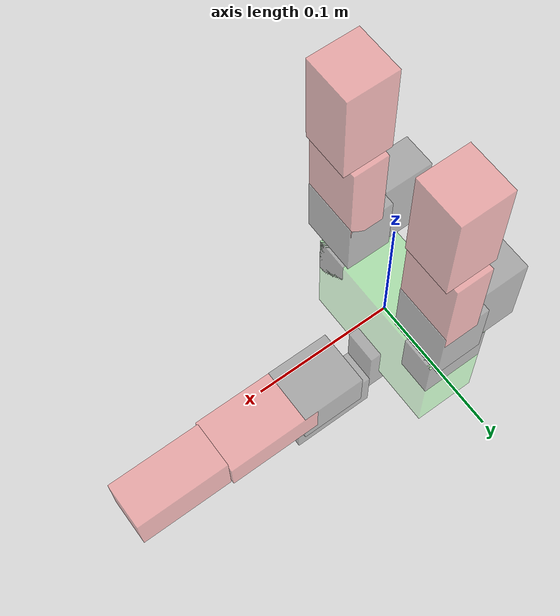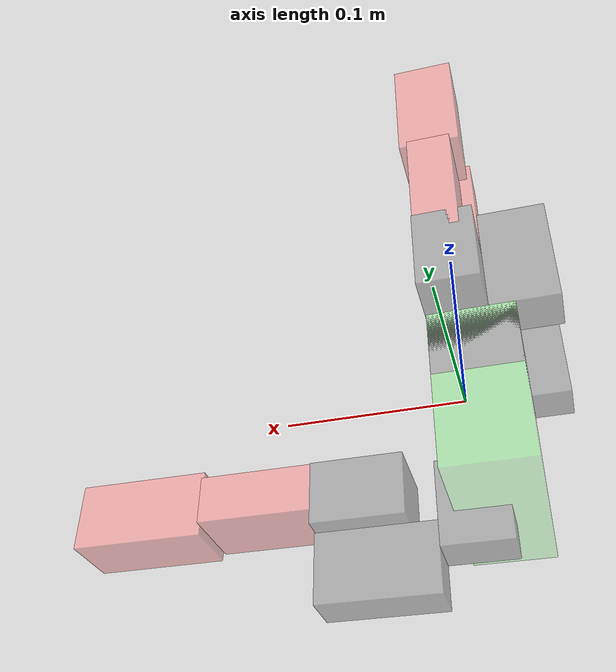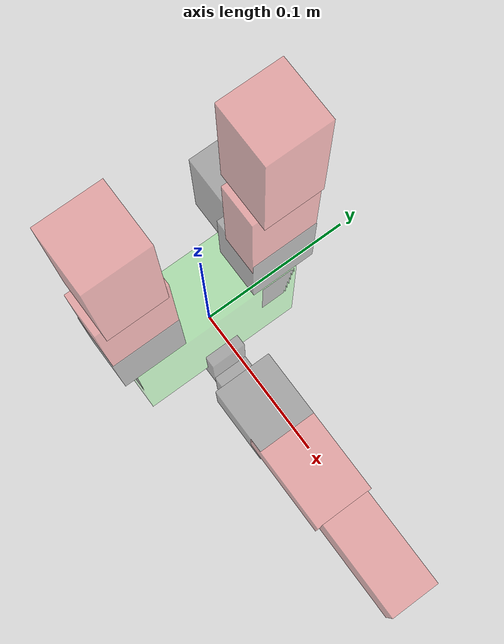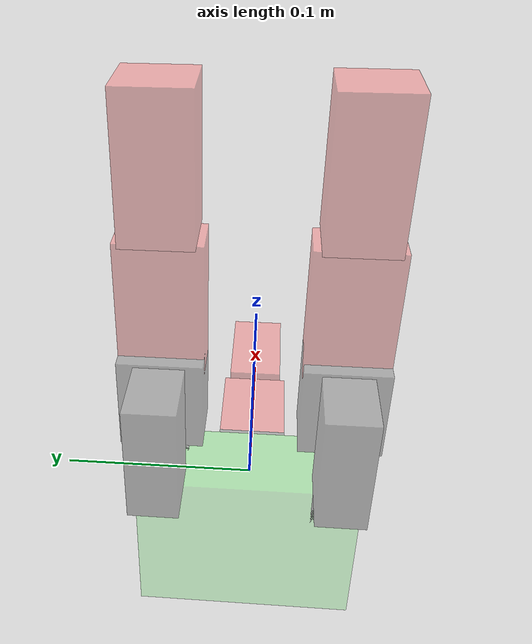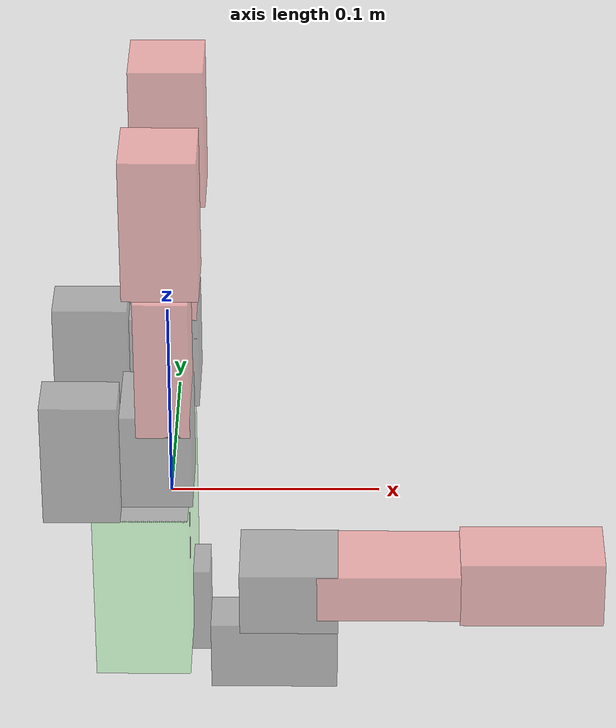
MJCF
<mujoco model="MuJoCo Model">
  <compiler angle="radian"/>

  <option timestep="0.0001" integrator="implicitfast"/>

  <default>
    <joint armature="0.01" frictionloss="0.01"/>
    <geom conaffinity="2" condim="4" friction="0.9 0.2 0.2" solref="0.001"/>

    <equality solref="1e-06 30"/>
    <general ctrllimited="true" biastype="affine" gainprm="1000000" biasprm="0 -1000000"/>
  </default>

  <asset>
    <texture type="skybox" builtin="gradient" rgb1="1 1 1" rgb2="1 1 1" width="265" height="1590"/>
    <texture type="2d" name="grid" builtin="checker" rgb1="0.1 0.2 0.3" rgb2="0.2 0.3 0.4" width="300" height="300"/>
    <material name="grid" texture="grid" texrepeat="10 10" reflectance="0.2"/>
  </asset>

  <worldbody>
    <geom name="fingers_bbox" size="0.0225 0.0575 0.043" pos="-0.0125 0 -0.025" type="box" rgba="0 1 0 0.2"/>
    <light pos="0 0 10" dir="0 0 -1"/>
    <body name="ID1_ROT" pos="0 0.045 0">
      <geom name="ID1_ROT_geom" size="0.0225 0.0125 0.018" pos="-0.0125 0 0" type="box" rgba="0.5 0.5 0.5 0.5"/>
      <body name="ID1_ABD" pos="-0.0395 0 0.07" quat="0.707107 0 0.707107 0">
        <joint name="ID1_ROT_joint" pos="0.07 0 0.0395" axis="-1 0 0" range="-1.5708 0"/>
        <geom name="ID1_ABD_geom" size="0.031 0.0125 0.018" pos="0.021 0 0" type="box" rgba="0.5 0.5 0.5 0.5"/>
        <body name="ID1_PIP" pos="0 0 0.0395" quat="0.707107 -0.707107 0 0">
          <joint name="ID1_ABD_joint" pos="0 0.0395 0" axis="0 -1 0" range="-1.5708 1.5708"/>
          <geom name="ID1_PIP_geom" size="0.024 0.0165 0.021" pos="0.0136 0.0035 0" type="box" rgba="0.5 0.5 0.5 0.5"/>
          <body name="ID1_DIP" pos="-0.07 0 0">
            <joint name="ID1_PIP_joint" pos="0.07 0 0" axis="0 0 1" range="0 1.5708"/>
            <geom name="ID1_DIP_geom" size="0.035 0.0125 0.021" pos="0.035 0 0" type="box" rgba="1 0.5 0.5 0.5"/>
            <body name="ID1_FIN" pos="-0.07 0 0">
              <joint name="ID1_DIP_joint" pos="0.07 0 0" axis="0 0 1" range="0 1.5708"/>
              <geom name="ID1_FIN_geom" size="0.035 0.0175 0.0175" pos="0.035 0 0" type="box" rgba="1 0.5 0.5 0.5"/>
            </body>
          </body>
        </body>
      </body>
    </body>
    <body name="ID2_ROT" pos="0 -0.045 0">
      <geom name="ID2_ROT_geom" size="0.0225 0.0125 0.018" pos="-0.0125 0 0" type="box" rgba="0.5 0.5 0.5 0.5"/>
      <body name="ID2_ABD" pos="-0.0395 0 0.07" quat="0.707107 0 0.707107 0">
        <joint name="ID2_ROT_joint" pos="0.07 0 0.0395" axis="-1 0 0" range="-1.5708 0"/>
        <geom name="ID2_ABD_geom" size="0.031 0.0125 0.018" pos="0.021 0 0" type="box" rgba="0.5 0.5 0.5 0.5"/>
        <body name="ID2_PIP" pos="0 0 0.0395" quat="0.707107 -0.707107 0 0">
          <joint name="ID2_ABD_joint" pos="0 0.0395 0" axis="0 -1 0" range="-1.5708 1.5708"/>
          <geom name="ID2_PIP_geom" size="0.024 0.0165 0.021" pos="0.0136 0.0035 0" type="box" rgba="0.5 0.5 0.5 0.5"/>
          <body name="ID2_DIP" pos="-0.07 0 0">
            <joint name="ID2_PIP_joint" pos="0.07 0 0" axis="0 0 1" range="0 1.5708"/>
            <geom name="ID2_DIP_geom" size="0.035 0.0125 0.021" pos="0.035 0 0" type="box" rgba="1 0.5 0.5 0.5"/>
            <body name="ID2_FIN" pos="-0.07 0 0">
              <joint name="ID2_DIP_joint" pos="0.07 0 0" axis="0 0 1" range="0 1.5708"/>
              <geom name="ID2_FIN_geom" size="0.035 0.0175 0.0175" pos="0.035 0 0" type="box" rgba="1 0.5 0.5 0.5"/>
            </body>
          </body>
        </body>
      </body>
    </body>
    <body name="ID3_ROT" pos="0 0 -0.05" quat="0 0.707107 0 0.707107">
      <geom name="ID3_ROT_geom" size="0.0225 0.0125 0.018" pos="-0.0125 0 0" type="box" rgba="0.5 0.5 0.5 0.5"/>
      <body name="ID3_ABD" pos="-0.0395 0 0.07" quat="0.707107 0 0.707107 0">
        <joint name="ID3_ROT_joint" pos="0.07 0 0.0395" axis="-1 0 0" range="-1.5708 0"/>
        <geom name="ID3_ABD_geom" size="0.031 0.0125 0.018" pos="0.021 0 0" type="box" rgba="0.5 0.5 0.5 0.5"/>
        <body name="ID3_PIP" pos="0 0 0.0395" quat="0.707107 -0.707107 0 0">
          <joint name="ID3_ABD_joint" pos="0 0.0395 0" axis="0 -1 0" range="-1.5708 1.5708"/>
          <geom name="ID3_PIP_geom" size="0.024 0.0165 0.021" pos="0.0136 0.0035 0" type="box" rgba="0.5 0.5 0.5 0.5"/>
          <body name="ID3_DIP" pos="-0.07 0 0">
            <joint name="ID3_PIP_joint" pos="0.07 0 0" axis="0 0 1" range="0 1.5708"/>
            <geom name="ID3_DIP_geom" size="0.035 0.0125 0.021" pos="0.035 0 0" type="box" rgba="1 0.5 0.5 0.5"/>
            <body name="ID3_FIN" pos="-0.07 0 0">
              <joint name="ID3_DIP_joint" pos="0.07 0 0" axis="0 0 1" range="0 1.5708"/>
              <geom name="ID3_FIN_geom" size="0.035 0.0175 0.0175" pos="0.035 0 0" type="box" rgba="1 0.5 0.5 0.5"/>
            </body>
          </body>
        </body>
      </body>
    </body>
  </worldbody>

  <actuator>
    <position name="ID1_ROT_joint_pos" joint="ID1_ROT_joint" ctrlrange="-90 0" timeconst="1"/>
    <position name="ID1_ABD_joint_pos" joint="ID1_ABD_joint" ctrlrange="-90 90" timeconst="1"/>
    <position name="ID1_PIP_joint_pos" joint="ID1_PIP_joint" ctrlrange="0 90" timeconst="1"/>
    <position name="ID1_DIP_joint_pos" joint="ID1_DIP_joint" ctrlrange="0 90" timeconst="1"/>
    <position name="ID2_ROT_joint_pos" joint="ID2_ROT_joint" ctrlrange="-90 0" timeconst="1"/>
    <position name="ID2_ABD_joint_pos" joint="ID2_ABD_joint" ctrlrange="-90 90" timeconst="1"/>
    <position name="ID2_PIP_joint_pos" joint="ID2_PIP_joint" ctrlrange="0 90" timeconst="1"/>
    <position name="ID2_DIP_joint_pos" joint="ID2_DIP_joint" ctrlrange="0 90" timeconst="1"/>
    <position name="ID3_ROT_joint_pos" joint="ID3_ROT_joint" ctrlrange="-90 0" timeconst="1"/>
    <position name="ID3_ABD_joint_pos" joint="ID3_ABD_joint" ctrlrange="-90 90" timeconst="1"/>
    <position name="ID3_PIP_joint_pos" joint="ID3_PIP_joint" ctrlrange="0 90" timeconst="1"/>
    <position name="ID3_DIP_joint_pos" joint="ID3_DIP_joint" ctrlrange="0 90" timeconst="1"/>
  </actuator>
</mujoco>
